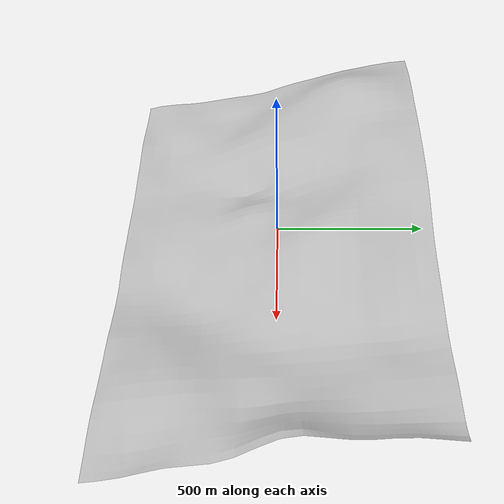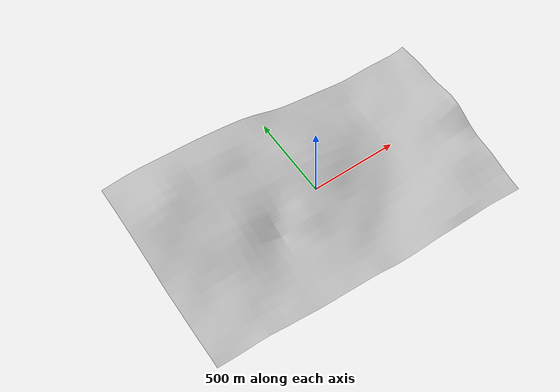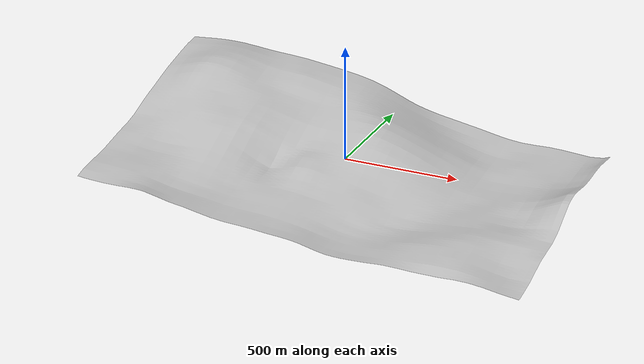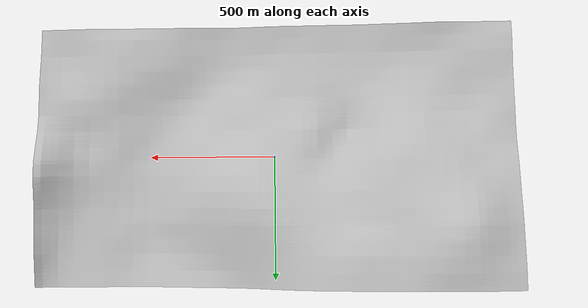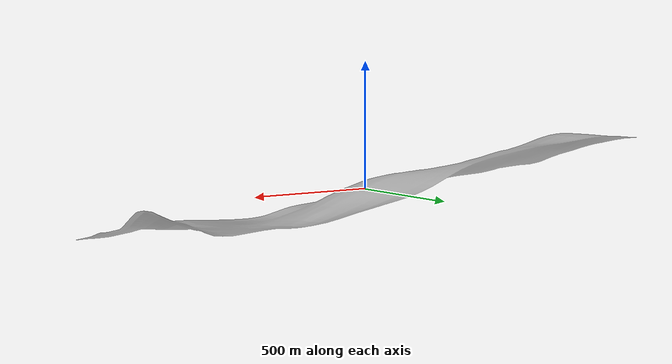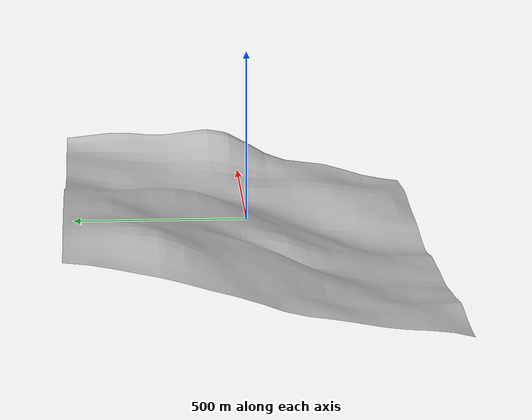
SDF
<?xml version="1.0" ?>
<sdf version="1.4">
  <model name="l1">
	<static>true</static>
	<link name="link">
	  <pose>0 0 -63 0 0 0</pose>
	    <collision name="my_collision">
		<geometry>
                <mesh><uri>model://l1/untitled.dae</uri></mesh>
		 </geometry>
	    </collision>

	    <visual name="my_visual">
		<geometry>
                <mesh><uri>model://l1/untitled.dae</uri></mesh>
		 </geometry>
	    </visual>
	</link>
</model>
</sdf>
